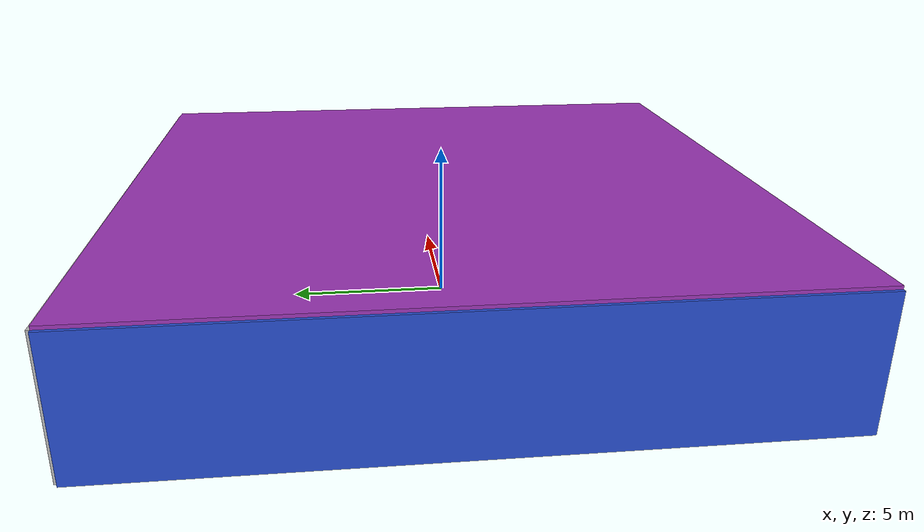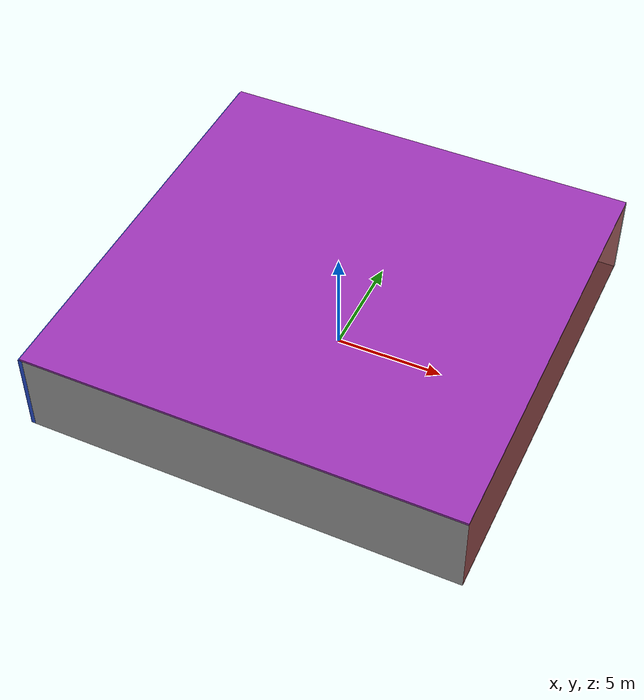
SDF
<sdf version="1.4">
 <world name="default">
  <physics type="ode">
   <max_step_size>0.001</max_step_size>
   <real_time_factor>1</real_time_factor>
   <real_time_update_rate>1000</real_time_update_rate>
   <gravity>0 0 -9.8</gravity>
  </physics>
  <scene><ambient>0.4 0.4 0.4 1</ambient><background>0.7 0.7 0.7 1</background><shadows>1</shadows></scene>
  <model name="Surrounding">
   <static>1</static>
   <link name="Ceiling">
    <collision name="Ceiling_Collision"><geometry><box><size>20 20 0.1</size></box></geometry></collision>
    <visual name="Ceiling_Visual">
     <geometry><box><size>20 20 0.1</size></box></geometry>
     <material>
      <script><uri>file://media/materials/scripts/gazebo.material</uri><name>Gazebo/PurpleGlow</name></script>
     </material>
    </visual>
    <pose>0 0 4.05 0 0 0</pose>
   </link>
   <link name="Wall_South">
    <collision name="Wall_South_Collision">
     <geometry><box><size>20 0 4</size></box></geometry>
     <pose>0 0 2 0 -0 0</pose>
    </collision>
    <visual name="Wall_South_Visual">
     <pose>0 0 2 0 -0 0</pose>
     <geometry><box><size>20 0 4</size></box></geometry>
     <material>
      <script><uri>file://media/materials/scripts/gazebo.material</uri><name>Gazebo/GreyGradientSky</name></script>
     </material>
    </visual>
    <velocity_decay><linear>0</linear><angular>0</angular></velocity_decay>
    <pose>0 -10 0 0 -0 0</pose>
   </link>
   <link name="Wall_East">
    <collision name="Wall_21_Collision">
     <geometry><box><size>20 0 4</size></box></geometry>
     <pose>0 0 2 0 -0 0</pose>
    </collision>
    <visual name="Wall_21_Visual">
     <pose>0 0 2 0 -0 0</pose>
     <geometry><box><size>20 0 4</size></box></geometry>
     <material>
      <script><uri>file://media/materials/scripts/gazebo.material</uri><name>Gazebo/RedTransparent</name></script>
     </material>
    </visual>
    <velocity_decay><linear>0</linear><angular>0</angular></velocity_decay>
    <pose>10 0 0 0 -0 1.5708</pose>
   </link>
   <link name="Wall_North">
    <collision name="Wall_22_Collision">
     <geometry><box><size>20 0.2 4</size></box></geometry>
     <pose>0 0 2 0 -0 0</pose>
    </collision>
    <visual name="Wall_22_Visual">
     <pose>0 0 2 0 -0 0</pose>
     <geometry><box><size>20 0.2 4</size></box></geometry>
     <material>
      <script><uri>file://media/materials/scripts/gazebo.material</uri><name>Gazebo/Pioneer2Body</name></script>
     </material>
    </visual>
    <velocity_decay><linear>0</linear><angular>0</angular></velocity_decay>
    <pose>0 10 0 0 -0 0</pose>
   </link>
   <link name="Wall_West">
    <collision name="Wall_23_Collision">
     <geometry><box><size>20 0.2 4</size></box></geometry>
     <pose>0 0 2 0 -0 0</pose>
    </collision>
    <visual name="Wall_23_Visual">
     <pose>0 0 2 0 -0 0</pose>
     <geometry><box><size>20 0.2 4</size></box></geometry>
     <material>
      <script><uri>file://media/materials/scripts/gazebo.material</uri><name>Gazebo/BlueGlow</name></script>
     </material>
    </visual>
    <velocity_decay><linear>0</linear><angular>0</angular></velocity_decay>
    <pose>-10 0 0 0 0 -1.5708</pose>
   </link>
   <link name="Ground_link">
    <collision name="collision">
     <pose>0 0 .05 0 -0 0</pose>
     <geometry><box><size>20 20 0.1</size></box></geometry>
    </collision>
    <visual name="visual">
     <pose>0 0 .05 0 -0 0</pose>
     <geometry><box><size>20 20 0.1</size></box></geometry>
     <material>
      <script><uri>file://media/materials/scripts/gazebo.material</uri><name>Gazebo/DarkGrey</name></script>
     </material>
    </visual>
   </link>
   <static>1</static>
  </model>
  <spherical_coordinates>
   <surface_model>EARTH_WGS84</surface_model>
   <latitude_deg>0</latitude_deg>
   <longitude_deg>0</longitude_deg>
   <elevation>0</elevation>
   <heading_deg>0</heading_deg>
  </spherical_coordinates>
  <light name="lightball_0" type="diffuse">
   <diffuse>0.8 0.8 0.8 1</diffuse>
   <specular>0.2 0.2 0.2 1</specular>
   <attenuation>
    <range>100</range>
    <constant>0.7</constant>
    <linear>0.01</linear>
    <quadratic>0.001</quadratic>
   </attenuation>
   <direction>-0.5 0.1 -0.9</direction>
   <pose>-5.29956984477 -8.62220857376 1.88438412743 0 0 0</pose>
  </light>
  <light name="lightball_1" type="diffuse">
   <diffuse>0.8 0.8 0.8 1</diffuse>
   <specular>0.2 0.2 0.2 1</specular>
   <attenuation>
    <range>100</range>
    <constant>0.7</constant>
    <linear>0.01</linear>
    <quadratic>0.001</quadratic>
   </attenuation>
   <direction>-0.5 0.1 -0.9</direction>
   <pose>4.38849749346 -0.777518783851 2.48449213876 0 0 0</pose>
  </light>
  <light name="lightball_2" type="diffuse">
   <diffuse>0.8 0.8 0.8 1</diffuse>
   <specular>0.2 0.2 0.2 1</specular>
   <attenuation>
    <range>100</range>
    <constant>0.7</constant>
    <linear>0.01</linear>
    <quadratic>0.001</quadratic>
   </attenuation>
   <direction>-0.5 0.1 -0.9</direction>
   <pose>-7.65383404671 7.89748522918 2.57215430639 0 0 0</pose>
  </light>
  <include><uri>model://cabinet</uri><pose>-7.83055868175 0.783280172355 0 0 0 1.02836900314</pose></include>
  <include>
   <uri>model://construction_cone</uri>
   <pose>-7.10083528862 7.26853163376 0 0 0 0.494685226387</pose>
  </include>
  <include>
   <uri>model://construction_cone</uri>
   <pose>-4.666681868 -7.05223238487 0 0 0 1.54559531849</pose>
  </include>
  <include>
   <uri>model://construction_cone</uri>
   <pose>1.89878480843 -3.84327755543 0 0 0 1.72854504873</pose>
  </include>
 </world>
</sdf>

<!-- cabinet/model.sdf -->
<sdf version="1.5">
  <model name="cabinet">
    <static>true</static>
    <link name="cabinet_bottom_plate">
      <inertial>
        <pose>0 0 -1 0 0 0</pose>
        <inertia>
          <ixx>2.050000</ixx>
          <ixy>0</ixy>
          <ixz>0</ixz>
          <iyy>2.050000</iyy>
          <iyz>0</iyz>
          <izz>2.050000</izz>
        </inertia>
        <mass>25.000000</mass>
      </inertial>
      <collision name="cabinet_bottom_plate_geom">
        <pose>0 0 0.010000 0 0 0</pose>
        <geometry>
          <box>
            <size>0.450000 0.450000 0.020000</size>
          </box>
        </geometry>
      </collision>
      <visual name="cabinet_bottom_plate_geom_visual">
        <pose>0 0 0.010000 0 0 0</pose>
        <geometry>
          <box>
            <size>0.450000 0.450000 0.020000</size>
          </box>
        </geometry>
        <material>
          <script>
            <uri>model://media/materials/scripts/gazebo.material</uri>
            <name>Gazebo/Wood</name>
          </script>
        </material>
      </visual>
      <collision name="cabinet_bottom_plate_geom_cabinet_back_plate">
        <pose>0.235000 0 0.510000 0 0 0</pose>
        <geometry>
          <box>
            <size>0.020000 0.450000 1.020000</size>
          </box>
        </geometry>
      </collision>
      <visual name="cabinet_bottom_plate_geom_cabinet_back_plate_visual">
        <pose>0.235000 0 0.510000 0 0 0</pose>
        <geometry>
          <box>
            <size>0.020000 0.450000 1.020000</size>
          </box>
        </geometry>
        <material>
          <script>
            <uri>model://media/materials/scripts/gazebo.material</uri>
            <name>Gazebo/Wood</name>
          </script>
        </material>
      </visual>
      <collision name="cabinet_bottom_plate_geom_cabinet_left_plate">
        <pose>0 0.235000 0.510000 0 0 0</pose>
        <geometry>
          <box>
            <size>0.450000 0.020000 1.020000</size>
          </box>
        </geometry>
      </collision>
      <visual name="cabinet_bottom_plate_geom_cabinet_left_plate_visual">
        <pose>0 0.235000 0.510000 0 0 0</pose>
        <geometry>
          <box>
            <size>0.450000 0.020000 1.020000</size>
          </box>
        </geometry>
        <material>
          <script>
            <uri>model://media/materials/scripts/gazebo.material</uri>
            <name>Gazebo/Wood</name>
          </script>
        </material>
      </visual>
      <collision name="cabinet_bottom_plate_geom_cabinet_middle_plate">
        <pose>0 0 0.510000 0 0 0</pose>
        <geometry>
          <box>
            <size>0.450000 0.450000 0.020000</size>
          </box>
        </geometry>
      </collision>
      <visual name="cabinet_bottom_plate_geom_cabinet_middle_plate_visual">
        <pose>0 0 0.510000 0 0 0</pose>
        <geometry>
          <box>
            <size>0.450000 0.450000 0.020000</size>
          </box>
        </geometry>
        <material>
          <script>
            <uri>model://media/materials/scripts/gazebo.material</uri>
            <name>Gazebo/Wood</name>
          </script>
        </material>
      </visual>
      <collision name="cabinet_bottom_plate_geom_cabinet_right_plate">
        <pose>0 -0.235000 0.510000 0 0 0</pose>
        <geometry>
          <box>
            <size>0.450000 0.020000 1.020000</size>
          </box>
        </geometry>
      </collision>
      <visual name="cabinet_bottom_plate_geom_cabinet_right_plate_visual">
        <pose>0 -0.235000 0.510000 0 0 0</pose>
        <geometry>
          <box>
            <size>0.450000 0.020000 1.020000</size>
          </box>
        </geometry>
        <material>
          <script>
            <uri>model://media/materials/scripts/gazebo.material</uri>
            <name>Gazebo/Wood</name>
          </script>
        </material>
      </visual>
      <collision name="cabinet_bottom_plate_geom_cabinet_top_plate">
        <pose>0 0 1.010000 0 0 0</pose>
        <geometry>
          <box>
            <size>0.450000 0.450000 0.020000</size>
          </box>
        </geometry>
      </collision>
      <visual name="cabinet_bottom_plate_geom_cabinet_top_plate_visual">
        <pose>0 0 1.010000 0 0 0</pose>
        <geometry>
          <box>
            <size>0.450000 0.450000 0.020000</size>
          </box>
        </geometry>
        <material>
          <script>
            <uri>model://media/materials/scripts/gazebo.material</uri>
            <name>Gazebo/Wood</name>
          </script>
        </material>
      </visual>
    </link>
  </model>
</sdf>

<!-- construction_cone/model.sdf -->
<sdf version="1.5">
  <model name="Construction Cone">
    <link name="link">
      <collision name="collision">
        <geometry>
          <mesh>
            <scale>10 10 10</scale>
            <uri>file://isr-testbed/construction_cone/meshes/construction_cone.dae</uri>
          </mesh>
        </geometry>
      </collision>
      <visual name="visual">
        <geometry>
          <mesh>
            <scale>10 10 10</scale>
            <uri>file://isr-testbed/construction_cone/meshes/construction_cone.dae</uri>
          </mesh>
        </geometry>
      </visual>
    </link>
  </model>
</sdf>
